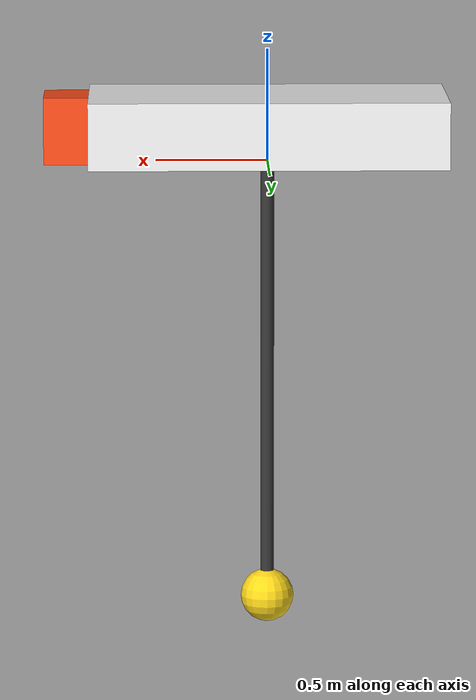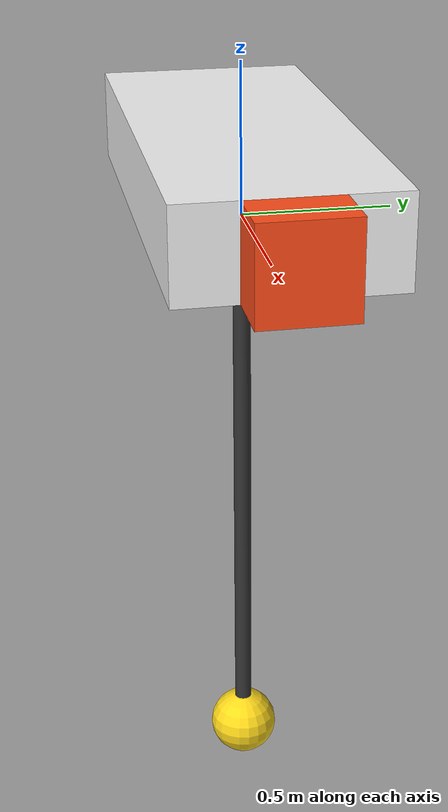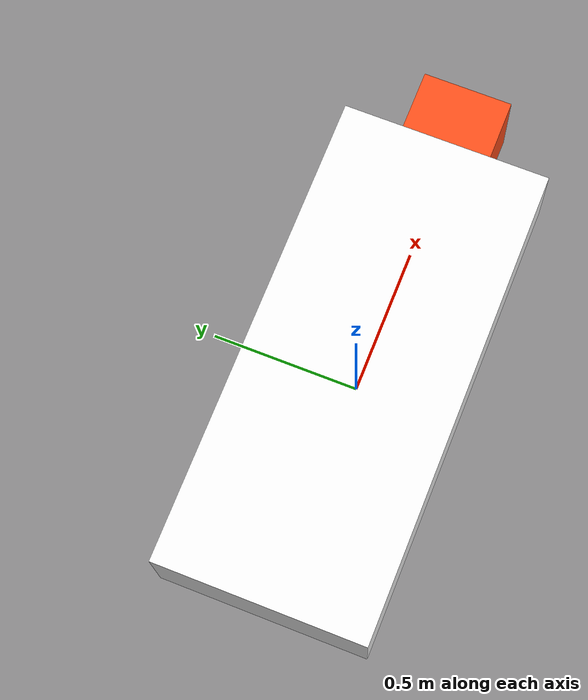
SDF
<?xml version="1.0"?>
<sdf version="1.6">
  <model name="agent">
    <link name="base_footprint">
      <gravity>false</gravity>
      <inertial><mass>10</mass>
        <inertia><ixx>1</ixx><iyy>1</iyy><izz>1</izz><ixy>0</ixy><ixz>0</ixz><iyz>0</iyz></inertia>
      </inertial>
      <visual name="hull">
        <pose>0 0 0.15 0 0 0</pose>
        <geometry><box><size>1.6 0.7 0.3</size></box></geometry>
        <material><ambient>0.95 0.95 0.95 1</ambient><diffuse>0.95 0.95 0.95 1</diffuse></material>
      </visual>
      <visual name="bow">
        <pose>0.9 0 0.15 0 0 0</pose>
        <geometry><box><size>0.2 0.3 0.3</size></box></geometry>
        <material><ambient>1 0.3 0.1 1</ambient><diffuse>1 0.3 0.1 1</diffuse></material>
      </visual>
      <!-- Transducer pole down to z_s = -2 m (display only; ranging depth comes from the JSON). -->
      <visual name="pole">
        <pose>0 0 -1 0 0 0</pose>
        <geometry><cylinder><radius>0.03</radius><length>2</length></cylinder></geometry>
        <material><ambient>0.2 0.2 0.2 1</ambient><diffuse>0.2 0.2 0.2 1</diffuse></material>
      </visual>
      <visual name="transducer">
        <pose>0 0 -2 0 0 0</pose>
        <geometry><sphere><radius>0.12</radius></sphere></geometry>
        <material><ambient>1 0.85 0.1 1</ambient><diffuse>1 0.85 0.1 1</diffuse></material>
      </visual>
    </link>

    <plugin name="planar_move" filename="libgazebo_ros_planar_move.so">
      <ros>
        <remapping>cmd_vel:=cmd_vel</remapping>
        <remapping>odom:=odom</remapping>
      </ros>
      <update_rate>50</update_rate>
      <publish_rate>50</publish_rate>
      <publish_odom>true</publish_odom>
      <publish_odom_tf>true</publish_odom_tf>
      <odometry_frame>odom</odometry_frame>
      <robot_base_frame>base_footprint</robot_base_frame>
      <covariance_x>0.0001</covariance_x>
      <covariance_y>0.0001</covariance_y>
      <covariance_yaw>0.01</covariance_yaw>
    </plugin>
  </model>
</sdf>
